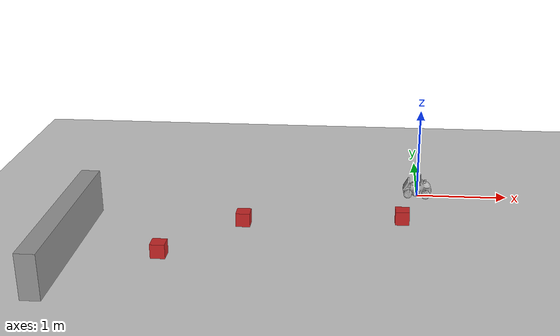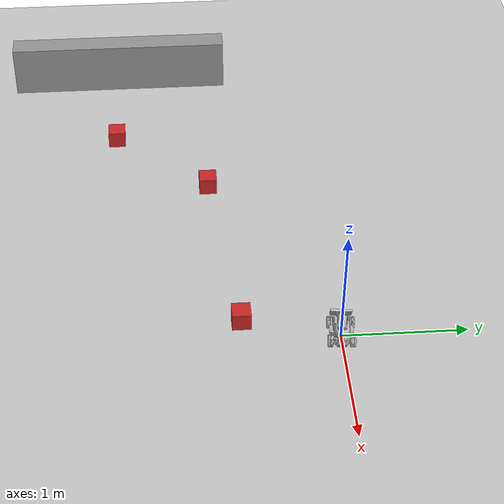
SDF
<sdf version="1.7">
 <world name="default">
  <model name="ground_plane">
   <static>1</static>
   <link name="link">
    <collision name="collision">
     <geometry><plane><normal>0 0 1</normal><size>100 100</size></plane></geometry>
     <surface><friction><ode><mu>100</mu><mu2>50</mu2></ode></friction></surface>
    </collision>
    <visual name="visual">
     <cast_shadows>0</cast_shadows>
     <geometry><plane><normal>0 0 1</normal><size>100 100</size></plane></geometry>
     <material>
      <script><uri>file://media/materials/scripts/gazebo.material</uri><name>Gazebo/Grey</name></script>
     </material>
    </visual>
   </link>
  </model>
  <model name="limo_gazebosim">
   <link name="base_link">
    <inertial>
     <pose>0.007905 0 -0.000592 0 -0 0</pose>
     <mass>2.3657</mass>
     <inertia>
      <ixx>0.240307</ixx>
      <ixy>0</ixy>
      <ixz>8.71335e-05</ixz>
      <iyy>0.961926</iyy>
      <iyz>0</iyz>
      <izz>0.961621</izz>
     </inertia>
    </inertial>
    <collision name="base_link_collision"><geometry><box><size>0.13 0.12 0.1</size></box></geometry></collision>
    <collision name="base_link_fixed_joint_lump__depth_camera_collision_collision_1">
     <pose>0.084 0 0.03 0 -0 0</pose>
     <geometry><box><size>0.02 0.06 0.015</size></box></geometry>
    </collision>
    <collision name="base_link_fixed_joint_lump__imu_collision_collision_2">
     <pose>0 0 -0.1 0 -0 0</pose>
     <geometry><box><size>0.001 0.001 0.001</size></box></geometry>
    </collision>
    <collision name="base_link_fixed_joint_lump__laser_collision_collision_3">
     <pose>0.103 0 -0.034 0 -0 0</pose>
     <geometry><cylinder><length>0.016</length><radius>0.032</radius></cylinder></geometry>
    </collision>
    <visual name="base_link_visual">
     <pose>0 0 -0.15 0 -0 1.57</pose>
     <geometry>
      <mesh>
       <scale>1 1 1</scale>
       <uri>file:///opt/ros/lcas/install/limo_description/share/limo_description/meshes/limo_base_lite.dae</uri>
      </mesh>
     </geometry>
    </visual>
    <visual name="base_link_fixed_joint_lump__depth_camera_visual_visual_1">
     <pose>0.084 0 0.03 0 -0 0</pose>
     <geometry><box><size>0.02 0.06 0.015</size></box></geometry>
    </visual>
    <visual name="base_link_fixed_joint_lump__imu_visual_visual_2">
     <pose>0 0 -0.1 0 -0 0</pose>
     <geometry><box><size>0.001 0.001 0.001</size></box></geometry>
    </visual>
    <visual name="base_link_fixed_joint_lump__laser_visual_visual_3">
     <pose>0.103 0 -0.034 0 -0 0</pose>
     <geometry><cylinder><length>0.01</length><radius>0.02</radius></cylinder></geometry>
    </visual>
    <sensor name="sensor_camera" type="depth">
     <always_on>0</always_on>
     <update_rate>1</update_rate>
     <camera name="limo_camera">
      <horizontal_fov>1.23918</horizontal_fov>
      <image><width>640</width><height>480</height><format>B8G8R8</format></image>
      <clip><near>0.1</near><far>100</far></clip>
     </camera>
     <plugin name="gazebo_ros_depth_camera_sensor" filename="libgazebo_ros_camera.so">
      <ros>
       <namespace>/limo</namespace>
       <remapping>limo_camera/image_raw:=limo_camera/image</remapping>
       <remapping>limo_camera/image_depth:=limo_camera/depth/camera_image_depth</remapping>
       <remapping>limo_camera/camera_info:=limo_camera/camera_info_raw</remapping>
       <remapping>limo_camera/camera_info_depth:=limo_camera/camera_info_depth</remapping>
       <remapping>limo_camera/points:=limo_camera/camera_points</remapping>
      </ros>
      <camera_name>depth_camera_link</camera_name>
      <frame_name>depth_link</frame_name>
      <hack_baseline>0.07</hack_baseline>
      <min_depth>0.001</min_depth>
     </plugin>
     <pose>0.084 0 0.03 0 -0 0</pose>
    </sensor>
    <sensor name="twr_imu" type="imu">
     <always_on>1</always_on>
     <update_rate>100</update_rate>
     <visualize>1</visualize>
     <imu>
      <angular_velocity>
       <x><noise type="gaussian"><mean>0</mean><stddev>0.0002</stddev></noise></x>
       <y><noise type="gaussian"><mean>0</mean><stddev>0.0002</stddev></noise></y>
       <z><noise type="gaussian"><mean>0</mean><stddev>0.0002</stddev></noise></z>
      </angular_velocity>
      <linear_acceleration>
       <x><noise type="gaussian"><mean>0</mean><stddev>0.017</stddev></noise></x>
       <y><noise type="gaussian"><mean>0</mean><stddev>0.017</stddev></noise></y>
       <z><noise type="gaussian"><mean>0</mean><stddev>0.017</stddev></noise></z>
      </linear_acceleration>
      <orientation>
       <x><noise type="gaussian"><mean>0.0</mean><stddev>2e-3</stddev></noise></x>
       <y><noise type="gaussian"><mean>0.0</mean><stddev>2e-3</stddev></noise></y>
       <z><noise type="gaussian"><mean>0.0</mean><stddev>2e-3</stddev></noise></z>
      </orientation>
     </imu>
     <plugin name="two_wheeled_robot_imu" filename="libgazebo_ros_imu_sensor.so">
      <initial_orientation_as_reference>0</initial_orientation_as_reference>
      <frame_name>imu_link</frame_name>
      <ros><namespace>/</namespace><remapping>~/out:=imu</remapping></ros>
     </plugin>
     <pose>0 0 -0.1 0 -0 0</pose>
    </sensor>
    <sensor name="laser" type="ray">
     <always_on>1</always_on>
     <visualize>1</visualize>
     <update_rate>8</update_rate>
     <ray>
      <scan>
       <horizontal>
        <samples>292</samples>
        <resolution>1</resolution>
        <min_angle>-2</min_angle>
        <max_angle>2</max_angle>
       </horizontal>
       <vertical><samples>1</samples><min_angle>0</min_angle><max_angle>0</max_angle></vertical>
      </scan>
      <range><min>0.12</min><max>8</max><resolution>0.02</resolution></range>
      <noise><type>gaussian</type><mean>0</mean><stddev>0.01</stddev></noise>
     </ray>
     <plugin name="scan" filename="libgazebo_ros_ray_sensor.so">
      <ros><remapping>~/out:=scan</remapping></ros>
      <output_type>sensor_msgs/LaserScan</output_type>
      <frame_name>laser_link</frame_name>
     </plugin>
     <pose>0.103 0 -0.034 0 -0 0</pose>
    </sensor>
   </link>
   <joint name="front_left_wheel" type="revolute">
    <pose relative_to="base_link">0.1 0.065 -0.1 0 -0 0</pose>
    <parent>base_link</parent>
    <child>front_left_wheel_link</child>
    <axis>
     <xyz>0 1 0</xyz>
     <limit><lower>-1e+16</lower><upper>1e+16</upper></limit>
     <dynamics><spring_reference>0</spring_reference><spring_stiffness>0</spring_stiffness></dynamics>
    </axis>
    <physics><ode><limit><cfm>0</cfm><erp>0.2</erp></limit></ode></physics>
   </joint>
   <link name="front_left_wheel_link">
    <pose relative_to="front_left_wheel">0 0 0 0 -0 0</pose>
    <inertial>
     <mass>0.5</mass>
     <inertia><ixx>0.01055</ixx><ixy>0</ixy><ixz>0</ixz><iyy>0.00075</iyy><iyz>0</iyz><izz>0.01055</izz></inertia>
    </inertial>
    <collision name="front_left_wheel_link_collision">
     <pose>0 0.0225 0 1.57 -0 0</pose>
     <geometry><cylinder><length>0.045</length><radius>0.045</radius></cylinder></geometry>
    </collision>
    <visual name="front_left_wheel_link_visual">
     <geometry>
      <mesh>
       <scale>1 1 1</scale>
       <uri>file:///opt/ros/lcas/install/limo_description/share/limo_description/meshes/limo_wheel_lite.dae</uri>
      </mesh>
     </geometry>
    </visual>
   </link>
   <joint name="front_right_wheel" type="revolute">
    <pose relative_to="base_link">0.1 -0.065 -0.1 3.14159 -0 0</pose>
    <parent>base_link</parent>
    <child>front_right_wheel_link</child>
    <axis>
     <xyz>0 -1 0</xyz>
     <limit><lower>-1e+16</lower><upper>1e+16</upper></limit>
     <dynamics><spring_reference>0</spring_reference><spring_stiffness>0</spring_stiffness></dynamics>
    </axis>
    <physics><ode><limit><cfm>0</cfm><erp>0.2</erp></limit></ode></physics>
   </joint>
   <link name="front_right_wheel_link">
    <pose relative_to="front_right_wheel">0 0 0 0 -0 0</pose>
    <inertial>
     <mass>0.5</mass>
     <inertia><ixx>0.01055</ixx><ixy>0</ixy><ixz>0</ixz><iyy>0.00075</iyy><iyz>0</iyz><izz>0.01055</izz></inertia>
    </inertial>
    <collision name="front_right_wheel_link_collision">
     <pose>0 0.0225 0 1.57 -0 0</pose>
     <geometry><cylinder><length>0.045</length><radius>0.045</radius></cylinder></geometry>
    </collision>
    <visual name="front_right_wheel_link_visual">
     <geometry>
      <mesh>
       <scale>1 1 1</scale>
       <uri>file:///opt/ros/lcas/install/limo_description/share/limo_description/meshes/limo_wheel_lite.dae</uri>
      </mesh>
     </geometry>
    </visual>
   </link>
   <joint name="rear_left_wheel" type="revolute">
    <pose relative_to="base_link">-0.1 0.065 -0.1 0 -0 0</pose>
    <parent>base_link</parent>
    <child>rear_left_wheel_link</child>
    <axis>
     <xyz>0 1 0</xyz>
     <limit><lower>-1e+16</lower><upper>1e+16</upper></limit>
     <dynamics><spring_reference>0</spring_reference><spring_stiffness>0</spring_stiffness></dynamics>
    </axis>
    <physics><ode><limit><cfm>0</cfm><erp>0.2</erp></limit></ode></physics>
   </joint>
   <link name="rear_left_wheel_link">
    <pose relative_to="rear_left_wheel">0 0 0 0 -0 0</pose>
    <inertial>
     <mass>0.5</mass>
     <inertia><ixx>0.01055</ixx><ixy>0</ixy><ixz>0</ixz><iyy>0.00075</iyy><iyz>0</iyz><izz>0.01055</izz></inertia>
    </inertial>
    <collision name="rear_left_wheel_link_collision">
     <pose>0 0.0225 0 1.57 -0 0</pose>
     <geometry><cylinder><length>0.045</length><radius>0.045</radius></cylinder></geometry>
    </collision>
    <visual name="rear_left_wheel_link_visual">
     <geometry>
      <mesh>
       <scale>1 1 1</scale>
       <uri>file:///opt/ros/lcas/install/limo_description/share/limo_description/meshes/limo_wheel_lite.dae</uri>
      </mesh>
     </geometry>
    </visual>
   </link>
   <joint name="rear_right_wheel" type="revolute">
    <pose relative_to="base_link">-0.1 -0.065 -0.1 3.14159 -0 0</pose>
    <parent>base_link</parent>
    <child>rear_right_wheel_link</child>
    <axis>
     <xyz>0 -1 0</xyz>
     <limit><lower>-1e+16</lower><upper>1e+16</upper></limit>
     <dynamics><spring_reference>0</spring_reference><spring_stiffness>0</spring_stiffness></dynamics>
    </axis>
    <physics><ode><limit><cfm>0</cfm><erp>0.2</erp></limit></ode></physics>
   </joint>
   <link name="rear_right_wheel_link">
    <pose relative_to="rear_right_wheel">0 0 0 0 -0 0</pose>
    <inertial>
     <mass>0.5</mass>
     <inertia><ixx>0.01055</ixx><ixy>0</ixy><ixz>0</ixz><iyy>0.00075</iyy><iyz>0</iyz><izz>0.01055</izz></inertia>
    </inertial>
    <collision name="rear_right_wheel_link_collision">
     <pose>0 0.0225 0 1.57 -0 0</pose>
     <geometry><cylinder><length>0.045</length><radius>0.045</radius></cylinder></geometry>
    </collision>
    <visual name="rear_right_wheel_link_visual">
     <geometry>
      <mesh>
       <scale>1 1 1</scale>
       <uri>file:///opt/ros/lcas/install/limo_description/share/limo_description/meshes/limo_wheel_lite.dae</uri>
      </mesh>
     </geometry>
    </visual>
   </link>
   <static>0</static>
   <plugin name="four_diff_controller" filename="libgazebo_ros_diff_drive.so">
    <update_rate>50</update_rate>
    <num_wheel_pairs>2</num_wheel_pairs>
    <left_joint>front_left_wheel</left_joint>
    <right_joint>front_right_wheel</right_joint>
    <left_joint>rear_left_wheel</left_joint>
    <right_joint>rear_right_wheel</right_joint>
    <wheel_separation>0.172</wheel_separation>
    <wheel_diameter>0.09</wheel_diameter>
    <max_wheel_torque>20</max_wheel_torque>
    <max_wheel_acceleration>1.0</max_wheel_acceleration>
    <command_topic>cmd_vel</command_topic>
    <publish_odom>1</publish_odom>
    <publish_odom_tf>1</publish_odom_tf>
    <publish_wheel_tf>0</publish_wheel_tf>
    <odometry_topic>odom</odometry_topic>
    <odometry_frame>odom</odometry_frame>
    <robot_base_frame>base_link</robot_base_frame>
    <odometry_source>1</odometry_source>
   </plugin>
   <pose>-0.002172 0.000703 0.145012 7e-05 2.5e-05 -0.079889</pose>
  </model>
  <model name="red_box">
   <link name="link">
    <inertial>
     <mass>0.00143404</mass>
     <inertia>
      <ixx>3.23e-06</ixx>
      <ixy>0</ixy>
      <ixz>0</ixz>
      <iyy>2.96e-06</iyy>
      <iyz>0</iyz>
      <izz>2.96e-06</izz>
     </inertia>
    </inertial>
    <visual name="visual">
     <geometry><box><size>0.15 0.15 0.15</size></box></geometry>
     <material>
      <script><name>Gazebo/Red</name><uri>file://media/materials/scripts/gazebo.material</uri></script>
      <shader type="pixel"><normal_map>__default__</normal_map></shader>
      <ambient>1 0 0 1</ambient>
      <diffuse>1 0 0 1</diffuse>
      <specular>0.1 0.1 0.1 1</specular>
      <emissive>0 0 0 1</emissive>
     </material>
    </visual>
    <collision name="collision">
     <geometry><box><size>0.15 0.15 0.15</size></box></geometry>
     <surface>
      <friction>
       <ode><mu>1</mu><mu2>1</mu2><fdir1>0 0 0</fdir1><slip1>0</slip1><slip2>0</slip2></ode>
       <torsional>
        <coefficient>1</coefficient>
        <patch_radius>0</patch_radius>
        <surface_radius>0</surface_radius>
        <use_patch_radius>1</use_patch_radius>
        <ode><slip>0</slip></ode>
       </torsional>
      </friction>
      <bounce><restitution_coefficient>0</restitution_coefficient><threshold>1e+06</threshold></bounce>
      <contact>
       <collide_without_contact>0</collide_without_contact>
       <collide_without_contact_bitmask>1</collide_without_contact_bitmask>
       <collide_bitmask>1</collide_bitmask>
       <ode>
        <soft_cfm>0</soft_cfm>
        <soft_erp>0.2</soft_erp>
        <kp>1e+13</kp>
        <kd>1</kd>
        <max_vel>0.01</max_vel>
        <min_depth>0</min_depth>
       </ode>
       <bullet>
        <split_impulse>1</split_impulse>
        <split_impulse_penetration_threshold>-0.01</split_impulse_penetration_threshold>
        <soft_cfm>0</soft_cfm>
        <soft_erp>0.2</soft_erp>
        <kp>1e+13</kp>
        <kd>1</kd>
       </bullet>
      </contact>
     </surface>
    </collision>
   </link>
   <static>0</static>
   <pose>-1.86943 -0.928662 0.074995 0 -6.5e-05 7e-06</pose>
  </model>
  <model name="red_box_1">
   <link name="link">
    <inertial>
     <mass>0.00143404</mass>
     <inertia>
      <ixx>3.23e-06</ixx>
      <ixy>0</ixy>
      <ixz>0</ixz>
      <iyy>2.96e-06</iyy>
      <iyz>0</iyz>
      <izz>2.96e-06</izz>
     </inertia>
    </inertial>
    <visual name="visual">
     <geometry><box><size>0.15 0.15 0.15</size></box></geometry>
     <material>
      <script><name>Gazebo/Red</name><uri>file://media/materials/scripts/gazebo.material</uri></script>
      <shader type="pixel"><normal_map>__default__</normal_map></shader>
      <ambient>1 0 0 1</ambient>
      <diffuse>1 0 0 1</diffuse>
      <specular>0.1 0.1 0.1 1</specular>
      <emissive>0 0 0 1</emissive>
     </material>
    </visual>
    <collision name="collision">
     <geometry><box><size>0.15 0.15 0.15</size></box></geometry>
     <surface>
      <friction>
       <ode><mu>1</mu><mu2>1</mu2><fdir1>0 0 0</fdir1><slip1>0</slip1><slip2>0</slip2></ode>
       <torsional>
        <coefficient>1</coefficient>
        <patch_radius>0</patch_radius>
        <surface_radius>0</surface_radius>
        <use_patch_radius>1</use_patch_radius>
        <ode><slip>0</slip></ode>
       </torsional>
      </friction>
      <bounce><restitution_coefficient>0</restitution_coefficient><threshold>1e+06</threshold></bounce>
      <contact>
       <collide_without_contact>0</collide_without_contact>
       <collide_without_contact_bitmask>1</collide_without_contact_bitmask>
       <collide_bitmask>1</collide_bitmask>
       <ode>
        <soft_cfm>0</soft_cfm>
        <soft_erp>0.2</soft_erp>
        <kp>1e+13</kp>
        <kd>1</kd>
        <max_vel>0.01</max_vel>
        <min_depth>0</min_depth>
       </ode>
       <bullet>
        <split_impulse>1</split_impulse>
        <split_impulse_penetration_threshold>-0.01</split_impulse_penetration_threshold>
        <soft_cfm>0</soft_cfm>
        <soft_erp>0.2</soft_erp>
        <kp>1e+13</kp>
        <kd>1</kd>
       </bullet>
      </contact>
     </surface>
    </collision>
   </link>
   <static>0</static>
   <pose>-0.190317 -0.760522 0.074995 -0 -6.5e-05 -9e-06</pose>
  </model>
  <model name="new_wall2">
   <link name="Wall_19">
    <pose>-1.01866 -1.02126 0 0 -0 1.5708</pose>
    <inertial>
     <mass>1</mass>
     <inertia><ixx>1</ixx><ixy>0</ixy><ixz>0</ixz><iyy>1</iyy><iyz>0</iyz><izz>1</izz></inertia>
    </inertial>
    <visual name="Wall_19_Visual">
     <pose>0.05 0 0.25 0 -0 0</pose>
     <geometry><box><size>2 0.2 0.491</size></box></geometry>
     <material>
      <script><uri>file://media/materials/scripts/gazebo.material</uri><name>Gazebo/Grey</name></script>
      <ambient>1 1 1 1</ambient>
      <shader type="pixel"><normal_map>__default__</normal_map></shader>
      <diffuse>0.7 0.7 0.7 1</diffuse>
      <specular>0.01 0.01 0.01 1</specular>
      <emissive>0 0 0 1</emissive>
     </material>
     <meta><layer>0</layer></meta>
    </visual>
    <collision name="Wall_19_Collision">
     <pose>0.05 0 0.25 0 -0 0</pose>
     <geometry><box><size>2 0.2 0.491</size></box></geometry>
     <surface>
      <friction>
       <ode><mu>1</mu><mu2>1</mu2><fdir1>0 0 0</fdir1><slip1>0</slip1><slip2>0</slip2></ode>
       <torsional>
        <coefficient>1</coefficient>
        <patch_radius>0</patch_radius>
        <surface_radius>0</surface_radius>
        <use_patch_radius>1</use_patch_radius>
        <ode><slip>0</slip></ode>
       </torsional>
      </friction>
      <bounce><restitution_coefficient>0</restitution_coefficient><threshold>1e+06</threshold></bounce>
      <contact>
       <collide_without_contact>0</collide_without_contact>
       <collide_without_contact_bitmask>1</collide_without_contact_bitmask>
       <collide_bitmask>1</collide_bitmask>
       <ode>
        <soft_cfm>0</soft_cfm>
        <soft_erp>0.2</soft_erp>
        <kp>1e+13</kp>
        <kd>1</kd>
        <max_vel>0.01</max_vel>
        <min_depth>0</min_depth>
       </ode>
       <bullet>
        <split_impulse>1</split_impulse>
        <split_impulse_penetration_threshold>-0.01</split_impulse_penetration_threshold>
        <soft_cfm>0</soft_cfm>
        <soft_erp>0.2</soft_erp>
        <kp>1e+13</kp>
        <kd>1</kd>
       </bullet>
      </contact>
     </surface>
    </collision>
   </link>
   <static>1</static>
   <pose>-2.54448 -0.72148 -0.029154 0 -0 0</pose>
  </model>
  <model name="red_box_3">
   <link name="link">
    <inertial>
     <mass>0.00143404</mass>
     <inertia>
      <ixx>3.23e-06</ixx>
      <ixy>0</ixy>
      <ixz>0</ixz>
      <iyy>2.96e-06</iyy>
      <iyz>0</iyz>
      <izz>2.96e-06</izz>
     </inertia>
    </inertial>
    <visual name="visual">
     <geometry><box><size>0.15 0.15 0.15</size></box></geometry>
     <material>
      <script><name>Gazebo/Red</name><uri>file://media/materials/scripts/gazebo.material</uri></script>
      <shader type="pixel"><normal_map>__default__</normal_map></shader>
      <ambient>0 1 0 1</ambient>
      <diffuse>0 1 0 1</diffuse>
      <specular>0.1 0.1 0.1 1</specular>
      <emissive>0 0 0 1</emissive>
     </material>
    </visual>
    <collision name="collision">
     <geometry><box><size>0.15 0.15 0.15</size></box></geometry>
     <surface>
      <friction>
       <ode><mu>1</mu><mu2>1</mu2><fdir1>0 0 0</fdir1><slip1>0</slip1><slip2>0</slip2></ode>
       <torsional>
        <coefficient>1</coefficient>
        <patch_radius>0</patch_radius>
        <surface_radius>0</surface_radius>
        <use_patch_radius>1</use_patch_radius>
        <ode><slip>0</slip></ode>
       </torsional>
      </friction>
      <bounce><restitution_coefficient>0</restitution_coefficient><threshold>1e+06</threshold></bounce>
      <contact>
       <collide_without_contact>0</collide_without_contact>
       <collide_without_contact_bitmask>1</collide_without_contact_bitmask>
       <collide_bitmask>1</collide_bitmask>
       <ode>
        <soft_cfm>0</soft_cfm>
        <soft_erp>0.2</soft_erp>
        <kp>1e+13</kp>
        <kd>1</kd>
        <max_vel>0.01</max_vel>
        <min_depth>0</min_depth>
       </ode>
       <bullet>
        <split_impulse>1</split_impulse>
        <split_impulse_penetration_threshold>-0.01</split_impulse_penetration_threshold>
        <soft_cfm>0</soft_cfm>
        <soft_erp>0.2</soft_erp>
        <kp>1e+13</kp>
        <kd>1</kd>
       </bullet>
      </contact>
     </surface>
    </collision>
   </link>
   <static>0</static>
   <pose>-2.60391 -1.7237 0.074995 0 6.5e-05 -1e-06</pose>
  </model>
 </world>
</sdf>
